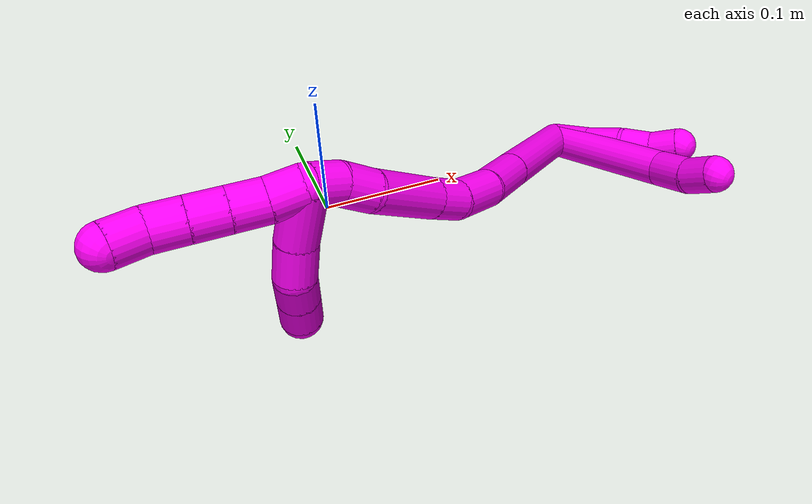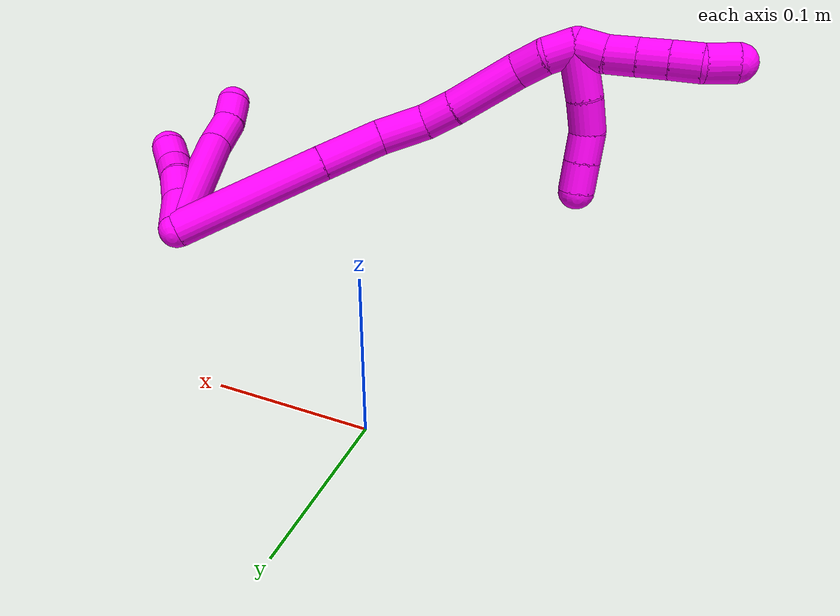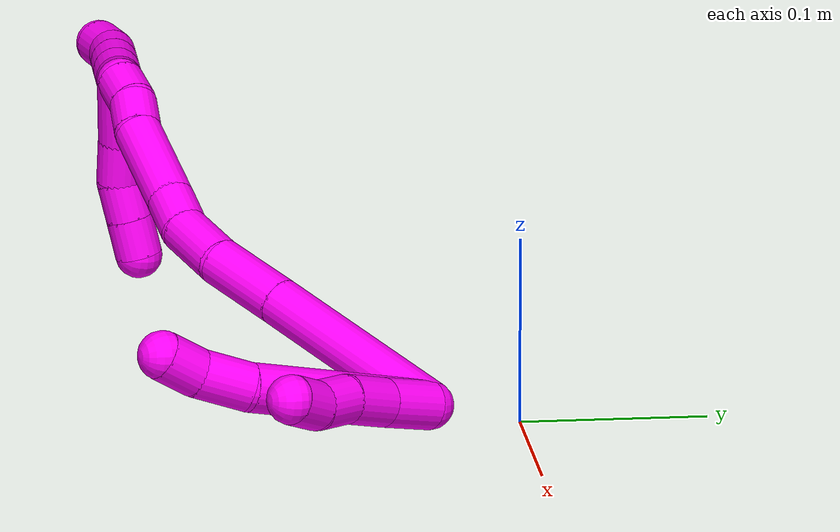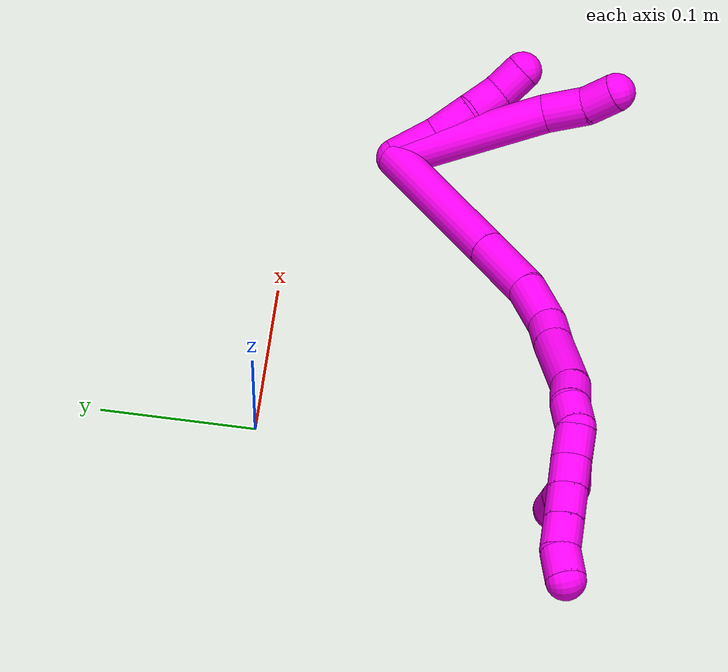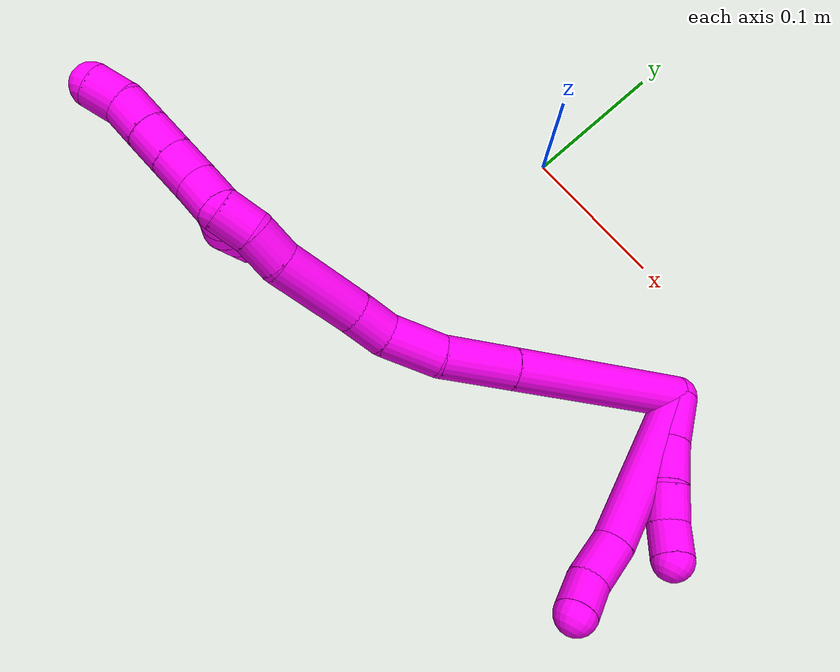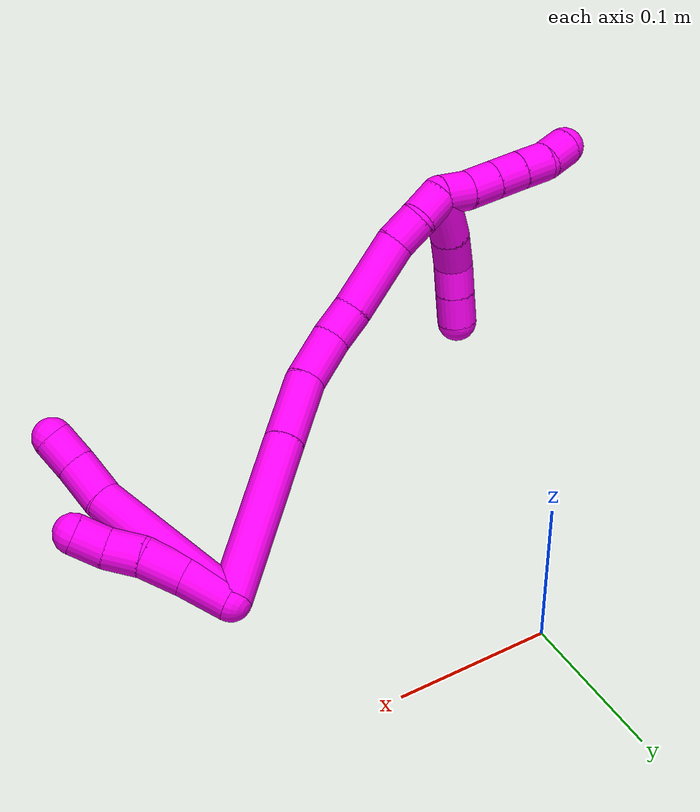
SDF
<sdf version="1.7">
 <world name="default">
  <model name="10">
   <static>0</static>
   <link name="10">
    <collision name="collision-cylinder-e_1_2_8">
     <pose>-0.006058 0.005767 0.049637 -0.115663 -0.120651 0.006994</pose>
     <geometry><cylinder><radius>0.0125</radius><length>0.100674</length></cylinder></geometry>
     <surface>
      <friction><ode><mu>1.16</mu><mu2>1.16</mu2><slip1>0</slip1><slip2>0</slip2></ode></friction>
      <contact><ode><kp>1e+06</kp><kd>1</kd><max_vel>0</max_vel><min_depth>0.001</min_depth></ode></contact>
     </surface>
    </collision>
    <visual name="visual-cylinder-e_1_2_8">
     <pose>-0.006058 0.005767 0.049637 -0.115663 -0.120651 0.006994</pose>
     <geometry><cylinder><radius>0.0125</radius><length>0.100674</length></cylinder></geometry>
     <material><ambient>1 0 0.964706 1</ambient></material>
    </visual>
    <collision name="collision-cylinder-e_2_8_9">
     <pose>-0.01673 0.012668 0.112376 -0.086325 -0.337361 0.01471</pose>
     <geometry><cylinder><radius>0.0125</radius><length>0.027873</length></cylinder></geometry>
     <surface>
      <friction><ode><mu>1.16</mu><mu2>1.16</mu2><slip1>0</slip1><slip2>0</slip2></ode></friction>
      <contact><ode><kp>1e+06</kp><kd>1</kd><max_vel>0</max_vel><min_depth>0.001</min_depth></ode></contact>
     </surface>
    </collision>
    <visual name="visual-cylinder-e_2_8_9">
     <pose>-0.01673 0.012668 0.112376 -0.086325 -0.337361 0.01471</pose>
     <geometry><cylinder><radius>0.0125</radius><length>0.027873</length></cylinder></geometry>
     <material><ambient>1 0 0.964706 1</ambient></material>
    </visual>
    <collision name="collision-cylinder-e_3_9_6">
     <pose>-0.024974 0.017362 0.134922 -0.360572 -0.345351 0.063557</pose>
     <geometry><cylinder><radius>0.0125</radius><length>0.021454</length></cylinder></geometry>
     <surface>
      <friction><ode><mu>1.16</mu><mu2>1.16</mu2><slip1>0</slip1><slip2>0</slip2></ode></friction>
      <contact><ode><kp>1e+06</kp><kd>1</kd><max_vel>0</max_vel><min_depth>0.001</min_depth></ode></contact>
     </surface>
    </collision>
    <visual name="visual-cylinder-e_3_9_6">
     <pose>-0.024974 0.017362 0.134922 -0.360572 -0.345351 0.063557</pose>
     <geometry><cylinder><radius>0.0125</radius><length>0.021454</length></cylinder></geometry>
     <material><ambient>1 0 0.964706 1</ambient></material>
    </visual>
    <collision name="collision-cylinder-e_1_2_10">
     <pose>0.000406 0.004032 0.014454 -0.272056 0.027026 -0.003699</pose>
     <geometry><cylinder><radius>0.0125</radius><length>0.030022</length></cylinder></geometry>
     <surface>
      <friction><ode><mu>1.16</mu><mu2>1.16</mu2><slip1>0</slip1><slip2>0</slip2></ode></friction>
      <contact><ode><kp>1e+06</kp><kd>1</kd><max_vel>0</max_vel><min_depth>0.001</min_depth></ode></contact>
     </surface>
    </collision>
    <visual name="visual-cylinder-e_1_2_10">
     <pose>0.000406 0.004032 0.014454 -0.272056 0.027026 -0.003699</pose>
     <geometry><cylinder><radius>0.0125</radius><length>0.030022</length></cylinder></geometry>
     <material><ambient>1 0 0.964706 1</ambient></material>
    </visual>
    <collision name="collision-cylinder-e_2_10_11">
     <pose>0.001869 0.013076 0.041296 -0.3844 0.078943 -0.01537</pose>
     <geometry><cylinder><radius>0.0125</radius><length>0.026813</length></cylinder></geometry>
     <surface>
      <friction><ode><mu>1.16</mu><mu2>1.16</mu2><slip1>0</slip1><slip2>0</slip2></ode></friction>
      <contact><ode><kp>1e+06</kp><kd>1</kd><max_vel>0</max_vel><min_depth>0.001</min_depth></ode></contact>
     </surface>
    </collision>
    <visual name="visual-cylinder-e_2_10_11">
     <pose>0.001869 0.013076 0.041296 -0.3844 0.078943 -0.01537</pose>
     <geometry><cylinder><radius>0.0125</radius><length>0.026813</length></cylinder></geometry>
     <material><ambient>1 0 0.964706 1</ambient></material>
    </visual>
    <collision name="collision-cylinder-e_3_11_12">
     <pose>0.006037 0.021353 0.06392 -0.308849 0.28188 -0.044164</pose>
     <geometry><cylinder><radius>0.0125</radius><length>0.022367</length></cylinder></geometry>
     <surface>
      <friction><ode><mu>1.16</mu><mu2>1.16</mu2><slip1>0</slip1><slip2>0</slip2></ode></friction>
      <contact><ode><kp>1e+06</kp><kd>1</kd><max_vel>0</max_vel><min_depth>0.001</min_depth></ode></contact>
     </surface>
    </collision>
    <visual name="visual-cylinder-e_3_11_12">
     <pose>0.006037 0.021353 0.06392 -0.308849 0.28188 -0.044164</pose>
     <geometry><cylinder><radius>0.0125</radius><length>0.022367</length></cylinder></geometry>
     <material><ambient>1 0 0.964706 1</ambient></material>
    </visual>
    <collision name="collision-cylinder-e_4_12_5">
     <pose>0.009944 0.029966 0.083036 -0.541914 0.076703 -0.021317</pose>
     <geometry><cylinder><radius>0.0125</radius><length>0.020798</length></cylinder></geometry>
     <surface>
      <friction><ode><mu>1.16</mu><mu2>1.16</mu2><slip1>0</slip1><slip2>0</slip2></ode></friction>
      <contact><ode><kp>1e+06</kp><kd>1</kd><max_vel>0</max_vel><min_depth>0.001</min_depth></ode></contact>
     </surface>
    </collision>
    <visual name="visual-cylinder-e_4_12_5">
     <pose>0.009944 0.029966 0.083036 -0.541914 0.076703 -0.021317</pose>
     <geometry><cylinder><radius>0.0125</radius><length>0.020798</length></cylinder></geometry>
     <material><ambient>1 0 0.964706 1</ambient></material>
    </visual>
    <collision name="collision-cylinder-e_1_2_13">
     <pose>-0.045691 -0.020581 0.019748 0.806041 -1.01273 -0.464383</pose>
     <geometry><cylinder><radius>0.0125</radius><length>0.107726</length></cylinder></geometry>
     <surface>
      <friction><ode><mu>1.16</mu><mu2>1.16</mu2><slip1>0</slip1><slip2>0</slip2></ode></friction>
      <contact><ode><kp>1e+06</kp><kd>1</kd><max_vel>0</max_vel><min_depth>0.001</min_depth></ode></contact>
     </surface>
    </collision>
    <visual name="visual-cylinder-e_1_2_13">
     <pose>-0.045691 -0.020581 0.019748 0.806041 -1.01273 -0.464383</pose>
     <geometry><cylinder><radius>0.0125</radius><length>0.107726</length></cylinder></geometry>
     <material><ambient>1 0 0.964706 1</ambient></material>
    </visual>
    <collision name="collision-cylinder-e_2_13_14">
     <pose>-0.110041 -0.04986 0.047574 0.822378 -1.00419 -0.469958</pose>
     <geometry><cylinder><radius>0.0125</radius><length>0.044231</length></cylinder></geometry>
     <surface>
      <friction><ode><mu>1.16</mu><mu2>1.16</mu2><slip1>0</slip1><slip2>0</slip2></ode></friction>
      <contact><ode><kp>1e+06</kp><kd>1</kd><max_vel>0</max_vel><min_depth>0.001</min_depth></ode></contact>
     </surface>
    </collision>
    <visual name="visual-cylinder-e_2_13_14">
     <pose>-0.110041 -0.04986 0.047574 0.822378 -1.00419 -0.469958</pose>
     <geometry><cylinder><radius>0.0125</radius><length>0.044231</length></cylinder></geometry>
     <material><ambient>1 0 0.964706 1</ambient></material>
    </visual>
    <collision name="collision-cylinder-e_3_14_15">
     <pose>-0.143605 -0.06586 0.058562 1.19153 -1.0855 -0.776341</pose>
     <geometry><cylinder><radius>0.0125</radius><length>0.033701</length></cylinder></geometry>
     <surface>
      <friction><ode><mu>1.16</mu><mu2>1.16</mu2><slip1>0</slip1><slip2>0</slip2></ode></friction>
      <contact><ode><kp>1e+06</kp><kd>1</kd><max_vel>0</max_vel><min_depth>0.001</min_depth></ode></contact>
     </surface>
    </collision>
    <visual name="visual-cylinder-e_3_14_15">
     <pose>-0.143605 -0.06586 0.058562 1.19153 -1.0855 -0.776341</pose>
     <geometry><cylinder><radius>0.0125</radius><length>0.033701</length></cylinder></geometry>
     <material><ambient>1 0 0.964706 1</ambient></material>
    </visual>
    <collision name="collision-cylinder-e_4_15_16">
     <pose>-0.169467 -0.075854 0.061116 1.70231 -1.32786 -1.45757</pose>
     <geometry><cylinder><radius>0.0125</radius><length>0.022578</length></cylinder></geometry>
     <surface>
      <friction><ode><mu>1.16</mu><mu2>1.16</mu2><slip1>0</slip1><slip2>0</slip2></ode></friction>
      <contact><ode><kp>1e+06</kp><kd>1</kd><max_vel>0</max_vel><min_depth>0.001</min_depth></ode></contact>
     </surface>
    </collision>
    <visual name="visual-cylinder-e_4_15_16">
     <pose>-0.169467 -0.075854 0.061116 1.70231 -1.32786 -1.45757</pose>
     <geometry><cylinder><radius>0.0125</radius><length>0.022578</length></cylinder></geometry>
     <material><ambient>1 0 0.964706 1</ambient></material>
    </visual>
    <collision name="collision-cylinder-e_5_16_17">
     <pose>-0.204948 -0.083278 0.061183 1.48162 -1.37945 -1.29263</pose>
     <geometry><cylinder><radius>0.0125</radius><length>0.04996</length></cylinder></geometry>
     <surface>
      <friction><ode><mu>1.16</mu><mu2>1.16</mu2><slip1>0</slip1><slip2>0</slip2></ode></friction>
      <contact><ode><kp>1e+06</kp><kd>1</kd><max_vel>0</max_vel><min_depth>0.001</min_depth></ode></contact>
     </surface>
    </collision>
    <visual name="visual-cylinder-e_5_16_17">
     <pose>-0.204948 -0.083278 0.061183 1.48162 -1.37945 -1.29263</pose>
     <geometry><cylinder><radius>0.0125</radius><length>0.04996</length></cylinder></geometry>
     <material><ambient>1 0 0.964706 1</ambient></material>
    </visual>
    <collision name="collision-cylinder-e_6_17_18">
     <pose>-0.239702 -0.089767 0.059426 2.46318 -1.30356 -2.2753</pose>
     <geometry><cylinder><radius>0.0125</radius><length>0.021211</length></cylinder></geometry>
     <surface>
      <friction><ode><mu>1.16</mu><mu2>1.16</mu2><slip1>0</slip1><slip2>0</slip2></ode></friction>
      <contact><ode><kp>1e+06</kp><kd>1</kd><max_vel>0</max_vel><min_depth>0.001</min_depth></ode></contact>
     </surface>
    </collision>
    <visual name="visual-cylinder-e_6_17_18">
     <pose>-0.239702 -0.089767 0.059426 2.46318 -1.30356 -2.2753</pose>
     <geometry><cylinder><radius>0.0125</radius><length>0.021211</length></cylinder></geometry>
     <material><ambient>1 0 0.964706 1</ambient></material>
    </visual>
    <collision name="collision-cylinder-e_7_18_1">
     <pose>-0.259432 -0.09546 0.056721 1.70323 -1.17504 -1.30046</pose>
     <geometry><cylinder><radius>0.0125</radius><length>0.020595</length></cylinder></geometry>
     <surface>
      <friction><ode><mu>1.16</mu><mu2>1.16</mu2><slip1>0</slip1><slip2>0</slip2></ode></friction>
      <contact><ode><kp>1e+06</kp><kd>1</kd><max_vel>0</max_vel><min_depth>0.001</min_depth></ode></contact>
     </surface>
    </collision>
    <visual name="visual-cylinder-e_7_18_1">
     <pose>-0.259432 -0.09546 0.056721 1.70323 -1.17504 -1.30046</pose>
     <geometry><cylinder><radius>0.0125</radius><length>0.020595</length></cylinder></geometry>
     <material><ambient>1 0 0.964706 1</ambient></material>
    </visual>
    <collision name="collision-cylinder-e_1_1_19">
     <pose>-0.27458 -0.106755 0.052464 2.04015 -0.600085 -0.933369</pose>
     <geometry><cylinder><radius>0.0125</radius><length>0.02</length></cylinder></geometry>
     <surface>
      <friction><ode><mu>1.16</mu><mu2>1.16</mu2><slip1>0</slip1><slip2>0</slip2></ode></friction>
      <contact><ode><kp>1e+06</kp><kd>1</kd><max_vel>0</max_vel><min_depth>0.001</min_depth></ode></contact>
     </surface>
    </collision>
    <visual name="visual-cylinder-e_1_1_19">
     <pose>-0.27458 -0.106755 0.052464 2.04015 -0.600085 -0.933369</pose>
     <geometry><cylinder><radius>0.0125</radius><length>0.02</length></cylinder></geometry>
     <material><ambient>1 0 0.964706 1</ambient></material>
    </visual>
    <collision name="collision-cylinder-e_2_19_20">
     <pose>-0.287276 -0.120362 0.045371 2.06431 -0.782223 -1.20802</pose>
     <geometry><cylinder><radius>0.0125</radius><length>0.02</length></cylinder></geometry>
     <surface>
      <friction><ode><mu>1.16</mu><mu2>1.16</mu2><slip1>0</slip1><slip2>0</slip2></ode></friction>
      <contact><ode><kp>1e+06</kp><kd>1</kd><max_vel>0</max_vel><min_depth>0.001</min_depth></ode></contact>
     </surface>
    </collision>
    <visual name="visual-cylinder-e_2_19_20">
     <pose>-0.287276 -0.120362 0.045371 2.06431 -0.782223 -1.20802</pose>
     <geometry><cylinder><radius>0.0125</radius><length>0.02</length></cylinder></geometry>
     <material><ambient>1 0 0.964706 1</ambient></material>
    </visual>
    <collision name="collision-cylinder-e_3_20_21">
     <pose>-0.301374 -0.132839 0.03862 2.06915 -0.782345 -1.21333</pose>
     <geometry><cylinder><radius>0.0125</radius><length>0.02</length></cylinder></geometry>
     <surface>
      <friction><ode><mu>1.16</mu><mu2>1.16</mu2><slip1>0</slip1><slip2>0</slip2></ode></friction>
      <contact><ode><kp>1e+06</kp><kd>1</kd><max_vel>0</max_vel><min_depth>0.001</min_depth></ode></contact>
     </surface>
    </collision>
    <visual name="visual-cylinder-e_3_20_21">
     <pose>-0.301374 -0.132839 0.03862 2.06915 -0.782345 -1.21333</pose>
     <geometry><cylinder><radius>0.0125</radius><length>0.02</length></cylinder></geometry>
     <material><ambient>1 0 0.964706 1</ambient></material>
    </visual>
    <collision name="collision-cylinder-e_4_21_22">
     <pose>-0.315392 -0.145356 0.031777 2.07307 -0.770988 -1.20236</pose>
     <geometry><cylinder><radius>0.0125</radius><length>0.02</length></cylinder></geometry>
     <surface>
      <friction><ode><mu>1.16</mu><mu2>1.16</mu2><slip1>0</slip1><slip2>0</slip2></ode></friction>
      <contact><ode><kp>1e+06</kp><kd>1</kd><max_vel>0</max_vel><min_depth>0.001</min_depth></ode></contact>
     </surface>
    </collision>
    <visual name="visual-cylinder-e_4_21_22">
     <pose>-0.315392 -0.145356 0.031777 2.07307 -0.770988 -1.20236</pose>
     <geometry><cylinder><radius>0.0125</radius><length>0.02</length></cylinder></geometry>
     <material><ambient>1 0 0.964706 1</ambient></material>
    </visual>
    <collision name="collision-cylinder-e_5_22_4">
     <pose>-0.329952 -0.158122 0.027711 1.66515 -0.86203 -0.935949</pose>
     <geometry><cylinder><radius>0.0125</radius><length>0.02</length></cylinder></geometry>
     <surface>
      <friction><ode><mu>1.16</mu><mu2>1.16</mu2><slip1>0</slip1><slip2>0</slip2></ode></friction>
      <contact><ode><kp>1e+06</kp><kd>1</kd><max_vel>0</max_vel><min_depth>0.001</min_depth></ode></contact>
     </surface>
    </collision>
    <visual name="visual-cylinder-e_5_22_4">
     <pose>-0.329952 -0.158122 0.027711 1.66515 -0.86203 -0.935949</pose>
     <geometry><cylinder><radius>0.0125</radius><length>0.02</length></cylinder></geometry>
     <material><ambient>1 0 0.964706 1</ambient></material>
    </visual>
    <collision name="collision-cylinder-e_1_1_23">
     <pose>-0.260302 -0.114228 0.05357 1.74611 0.520304 0.614826</pose>
     <geometry><cylinder><radius>0.0125</radius><length>0.034725</length></cylinder></geometry>
     <surface>
      <friction><ode><mu>1.16</mu><mu2>1.16</mu2><slip1>0</slip1><slip2>0</slip2></ode></friction>
      <contact><ode><kp>1e+06</kp><kd>1</kd><max_vel>0</max_vel><min_depth>0.001</min_depth></ode></contact>
     </surface>
    </collision>
    <visual name="visual-cylinder-e_1_1_23">
     <pose>-0.260302 -0.114228 0.05357 1.74611 0.520304 0.614826</pose>
     <geometry><cylinder><radius>0.0125</radius><length>0.034725</length></cylinder></geometry>
     <material><ambient>1 0 0.964706 1</ambient></material>
    </visual>
    <collision name="collision-cylinder-e_2_23_24">
     <pose>-0.245127 -0.138926 0.050115 1.65447 0.584095 0.631923</pose>
     <geometry><cylinder><radius>0.0125</radius><length>0.023731</length></cylinder></geometry>
     <surface>
      <friction><ode><mu>1.16</mu><mu2>1.16</mu2><slip1>0</slip1><slip2>0</slip2></ode></friction>
      <contact><ode><kp>1e+06</kp><kd>1</kd><max_vel>0</max_vel><min_depth>0.001</min_depth></ode></contact>
     </surface>
    </collision>
    <visual name="visual-cylinder-e_2_23_24">
     <pose>-0.245127 -0.138926 0.050115 1.65447 0.584095 0.631923</pose>
     <geometry><cylinder><radius>0.0125</radius><length>0.023731</length></cylinder></geometry>
     <material><ambient>1 0 0.964706 1</ambient></material>
    </visual>
    <collision name="collision-cylinder-e_3_24_25">
     <pose>-0.230904 -0.155107 0.046748 1.95305 0.845414 1.17461</pose>
     <geometry><cylinder><radius>0.0125</radius><length>0.020526</length></cylinder></geometry>
     <surface>
      <friction><ode><mu>1.16</mu><mu2>1.16</mu2><slip1>0</slip1><slip2>0</slip2></ode></friction>
      <contact><ode><kp>1e+06</kp><kd>1</kd><max_vel>0</max_vel><min_depth>0.001</min_depth></ode></contact>
     </surface>
    </collision>
    <visual name="visual-cylinder-e_3_24_25">
     <pose>-0.230904 -0.155107 0.046748 1.95305 0.845414 1.17461</pose>
     <geometry><cylinder><radius>0.0125</radius><length>0.020526</length></cylinder></geometry>
     <material><ambient>1 0 0.964706 1</ambient></material>
    </visual>
    <collision name="collision-cylinder-e_4_25_3">
     <pose>-0.215403 -0.167943 0.041608 1.95025 0.839542 1.16459</pose>
     <geometry><cylinder><radius>0.0125</radius><length>0.021018</length></cylinder></geometry>
     <surface>
      <friction><ode><mu>1.16</mu><mu2>1.16</mu2><slip1>0</slip1><slip2>0</slip2></ode></friction>
      <contact><ode><kp>1e+06</kp><kd>1</kd><max_vel>0</max_vel><min_depth>0.001</min_depth></ode></contact>
     </surface>
    </collision>
    <visual name="visual-cylinder-e_4_25_3">
     <pose>-0.215403 -0.167943 0.041608 1.95025 0.839542 1.16459</pose>
     <geometry><cylinder><radius>0.0125</radius><length>0.021018</length></cylinder></geometry>
     <material><ambient>1 0 0.964706 1</ambient></material>
    </visual>
    <collision name="collision-sphere-3">
     <pose>-0.207581 -0.174462 0.039009 0 -0 0</pose>
     <geometry><sphere><radius>0.0125</radius></sphere></geometry>
     <surface>
      <friction><ode><mu>1.16</mu><mu2>1.16</mu2><slip1>0</slip1><slip2>0</slip2></ode></friction>
      <contact><ode><kp>1e+06</kp><kd>1</kd><max_vel>0</max_vel><min_depth>0.001</min_depth></ode></contact>
     </surface>
    </collision>
    <visual name="visual-sphere-3">
     <pose>-0.207581 -0.174462 0.039009 0 -0 0</pose>
     <geometry><sphere><radius>0.0125</radius></sphere></geometry>
     <material><ambient>1 0 0.964706 1</ambient></material>
    </visual>
    <collision name="collision-sphere-25">
     <pose>-0.223225 -0.161424 0.044208 0 -0 0</pose>
     <geometry><sphere><radius>0.0125</radius></sphere></geometry>
     <surface>
      <friction><ode><mu>1.16</mu><mu2>1.16</mu2><slip1>0</slip1><slip2>0</slip2></ode></friction>
      <contact><ode><kp>1e+06</kp><kd>1</kd><max_vel>0</max_vel><min_depth>0.001</min_depth></ode></contact>
     </surface>
    </collision>
    <visual name="visual-sphere-25">
     <pose>-0.223225 -0.161424 0.044208 0 -0 0</pose>
     <geometry><sphere><radius>0.0125</radius></sphere></geometry>
     <material><ambient>1 0 0.964706 1</ambient></material>
    </visual>
    <collision name="collision-sphere-24">
     <pose>-0.238584 -0.14879 0.049288 0 -0 0</pose>
     <geometry><sphere><radius>0.0125</radius></sphere></geometry>
     <surface>
      <friction><ode><mu>1.16</mu><mu2>1.16</mu2><slip1>0</slip1><slip2>0</slip2></ode></friction>
      <contact><ode><kp>1e+06</kp><kd>1</kd><max_vel>0</max_vel><min_depth>0.001</min_depth></ode></contact>
     </surface>
    </collision>
    <visual name="visual-sphere-24">
     <pose>-0.238584 -0.14879 0.049288 0 -0 0</pose>
     <geometry><sphere><radius>0.0125</radius></sphere></geometry>
     <material><ambient>1 0 0.964706 1</ambient></material>
    </visual>
    <collision name="collision-sphere-23">
     <pose>-0.25167 -0.129062 0.050942 0 -0 0</pose>
     <geometry><sphere><radius>0.0125</radius></sphere></geometry>
     <surface>
      <friction><ode><mu>1.16</mu><mu2>1.16</mu2><slip1>0</slip1><slip2>0</slip2></ode></friction>
      <contact><ode><kp>1e+06</kp><kd>1</kd><max_vel>0</max_vel><min_depth>0.001</min_depth></ode></contact>
     </surface>
    </collision>
    <visual name="visual-sphere-23">
     <pose>-0.25167 -0.129062 0.050942 0 -0 0</pose>
     <geometry><sphere><radius>0.0125</radius></sphere></geometry>
     <material><ambient>1 0 0.964706 1</ambient></material>
    </visual>
    <collision name="collision-sphere-4">
     <pose>-0.337544 -0.164602 0.027098 0 -0 0</pose>
     <geometry><sphere><radius>0.0125</radius></sphere></geometry>
     <surface>
      <friction><ode><mu>1.16</mu><mu2>1.16</mu2><slip1>0</slip1><slip2>0</slip2></ode></friction>
      <contact><ode><kp>1e+06</kp><kd>1</kd><max_vel>0</max_vel><min_depth>0.001</min_depth></ode></contact>
     </surface>
    </collision>
    <visual name="visual-sphere-4">
     <pose>-0.337544 -0.164602 0.027098 0 -0 0</pose>
     <geometry><sphere><radius>0.0125</radius></sphere></geometry>
     <material><ambient>1 0 0.964706 1</ambient></material>
    </visual>
    <collision name="collision-sphere-22">
     <pose>-0.32236 -0.151642 0.028325 0 -0 0</pose>
     <geometry><sphere><radius>0.0125</radius></sphere></geometry>
     <surface>
      <friction><ode><mu>1.16</mu><mu2>1.16</mu2><slip1>0</slip1><slip2>0</slip2></ode></friction>
      <contact><ode><kp>1e+06</kp><kd>1</kd><max_vel>0</max_vel><min_depth>0.001</min_depth></ode></contact>
     </surface>
    </collision>
    <visual name="visual-sphere-22">
     <pose>-0.32236 -0.151642 0.028325 0 -0 0</pose>
     <geometry><sphere><radius>0.0125</radius></sphere></geometry>
     <material><ambient>1 0 0.964706 1</ambient></material>
    </visual>
    <collision name="collision-sphere-21">
     <pose>-0.308424 -0.139069 0.03523 0 -0 0</pose>
     <geometry><sphere><radius>0.0125</radius></sphere></geometry>
     <surface>
      <friction><ode><mu>1.16</mu><mu2>1.16</mu2><slip1>0</slip1><slip2>0</slip2></ode></friction>
      <contact><ode><kp>1e+06</kp><kd>1</kd><max_vel>0</max_vel><min_depth>0.001</min_depth></ode></contact>
     </surface>
    </collision>
    <visual name="visual-sphere-21">
     <pose>-0.308424 -0.139069 0.03523 0 -0 0</pose>
     <geometry><sphere><radius>0.0125</radius></sphere></geometry>
     <material><ambient>1 0 0.964706 1</ambient></material>
    </visual>
    <collision name="collision-sphere-20">
     <pose>-0.294325 -0.126609 0.042011 0 -0 0</pose>
     <geometry><sphere><radius>0.0125</radius></sphere></geometry>
     <surface>
      <friction><ode><mu>1.16</mu><mu2>1.16</mu2><slip1>0</slip1><slip2>0</slip2></ode></friction>
      <contact><ode><kp>1e+06</kp><kd>1</kd><max_vel>0</max_vel><min_depth>0.001</min_depth></ode></contact>
     </surface>
    </collision>
    <visual name="visual-sphere-20">
     <pose>-0.294325 -0.126609 0.042011 0 -0 0</pose>
     <geometry><sphere><radius>0.0125</radius></sphere></geometry>
     <material><ambient>1 0 0.964706 1</ambient></material>
    </visual>
    <collision name="collision-sphere-11">
     <pose>0.002926 0.018088 0.053686 0 -0 0</pose>
     <geometry><sphere><radius>0.0125</radius></sphere></geometry>
     <surface>
      <friction><ode><mu>1.16</mu><mu2>1.16</mu2><slip1>0</slip1><slip2>0</slip2></ode></friction>
      <contact><ode><kp>1e+06</kp><kd>1</kd><max_vel>0</max_vel><min_depth>0.001</min_depth></ode></contact>
     </surface>
    </collision>
    <visual name="visual-sphere-11">
     <pose>0.002926 0.018088 0.053686 0 -0 0</pose>
     <geometry><sphere><radius>0.0125</radius></sphere></geometry>
     <material><ambient>1 0 0.964706 1</ambient></material>
    </visual>
    <collision name="collision-sphere-10">
     <pose>0.000811 0.008064 0.028907 0 -0 0</pose>
     <geometry><sphere><radius>0.0125</radius></sphere></geometry>
     <surface>
      <friction><ode><mu>1.16</mu><mu2>1.16</mu2><slip1>0</slip1><slip2>0</slip2></ode></friction>
      <contact><ode><kp>1e+06</kp><kd>1</kd><max_vel>0</max_vel><min_depth>0.001</min_depth></ode></contact>
     </surface>
    </collision>
    <visual name="visual-sphere-10">
     <pose>0.000811 0.008064 0.028907 0 -0 0</pose>
     <geometry><sphere><radius>0.0125</radius></sphere></geometry>
     <material><ambient>1 0 0.964706 1</ambient></material>
    </visual>
    <collision name="collision-sphere-6">
     <pose>-0.028605 0.020924 0.144366 0 -0 0</pose>
     <geometry><sphere><radius>0.0125</radius></sphere></geometry>
     <surface>
      <friction><ode><mu>1.16</mu><mu2>1.16</mu2><slip1>0</slip1><slip2>0</slip2></ode></friction>
      <contact><ode><kp>1e+06</kp><kd>1</kd><max_vel>0</max_vel><min_depth>0.001</min_depth></ode></contact>
     </surface>
    </collision>
    <visual name="visual-sphere-6">
     <pose>-0.028605 0.020924 0.144366 0 -0 0</pose>
     <geometry><sphere><radius>0.0125</radius></sphere></geometry>
     <material><ambient>1 0 0.964706 1</ambient></material>
    </visual>
    <collision name="collision-sphere-9">
     <pose>-0.021343 0.013801 0.125478 0 -0 0</pose>
     <geometry><sphere><radius>0.0125</radius></sphere></geometry>
     <surface>
      <friction><ode><mu>1.16</mu><mu2>1.16</mu2><slip1>0</slip1><slip2>0</slip2></ode></friction>
      <contact><ode><kp>1e+06</kp><kd>1</kd><max_vel>0</max_vel><min_depth>0.001</min_depth></ode></contact>
     </surface>
    </collision>
    <visual name="visual-sphere-9">
     <pose>-0.021343 0.013801 0.125478 0 -0 0</pose>
     <geometry><sphere><radius>0.0125</radius></sphere></geometry>
     <material><ambient>1 0 0.964706 1</ambient></material>
    </visual>
    <collision name="collision-sphere-2">
     <geometry><sphere><radius>0.0125</radius></sphere></geometry>
     <surface>
      <friction><ode><mu>1.16</mu><mu2>1.16</mu2><slip1>0</slip1><slip2>0</slip2></ode></friction>
      <contact><ode><kp>1e+06</kp><kd>1</kd><max_vel>0</max_vel><min_depth>0.001</min_depth></ode></contact>
     </surface>
    </collision>
    <visual name="visual-sphere-2">
     <geometry><sphere><radius>0.0125</radius></sphere></geometry>
     <material><ambient>1 0 0.964706 1</ambient></material>
    </visual>
    <collision name="collision-sphere-19">
     <pose>-0.280228 -0.114115 0.048731 0 -0 0</pose>
     <geometry><sphere><radius>0.0125</radius></sphere></geometry>
     <surface>
      <friction><ode><mu>1.16</mu><mu2>1.16</mu2><slip1>0</slip1><slip2>0</slip2></ode></friction>
      <contact><ode><kp>1e+06</kp><kd>1</kd><max_vel>0</max_vel><min_depth>0.001</min_depth></ode></contact>
     </surface>
    </collision>
    <visual name="visual-sphere-19">
     <pose>-0.280228 -0.114115 0.048731 0 -0 0</pose>
     <geometry><sphere><radius>0.0125</radius></sphere></geometry>
     <material><ambient>1 0 0.964706 1</ambient></material>
    </visual>
    <collision name="collision-sphere-8">
     <pose>-0.012117 0.011534 0.099274 0 -0 0</pose>
     <geometry><sphere><radius>0.0125</radius></sphere></geometry>
     <surface>
      <friction><ode><mu>1.16</mu><mu2>1.16</mu2><slip1>0</slip1><slip2>0</slip2></ode></friction>
      <contact><ode><kp>1e+06</kp><kd>1</kd><max_vel>0</max_vel><min_depth>0.001</min_depth></ode></contact>
     </surface>
    </collision>
    <visual name="visual-sphere-8">
     <pose>-0.012117 0.011534 0.099274 0 -0 0</pose>
     <geometry><sphere><radius>0.0125</radius></sphere></geometry>
     <material><ambient>1 0 0.964706 1</ambient></material>
    </visual>
    <collision name="collision-sphere-12">
     <pose>0.009147 0.024618 0.074153 0 -0 0</pose>
     <geometry><sphere><radius>0.0125</radius></sphere></geometry>
     <surface>
      <friction><ode><mu>1.16</mu><mu2>1.16</mu2><slip1>0</slip1><slip2>0</slip2></ode></friction>
      <contact><ode><kp>1e+06</kp><kd>1</kd><max_vel>0</max_vel><min_depth>0.001</min_depth></ode></contact>
     </surface>
    </collision>
    <visual name="visual-sphere-12">
     <pose>0.009147 0.024618 0.074153 0 -0 0</pose>
     <geometry><sphere><radius>0.0125</radius></sphere></geometry>
     <material><ambient>1 0 0.964706 1</ambient></material>
    </visual>
    <collision name="collision-sphere-5">
     <pose>0.010741 0.035314 0.09192 0 -0 0</pose>
     <geometry><sphere><radius>0.0125</radius></sphere></geometry>
     <surface>
      <friction><ode><mu>1.16</mu><mu2>1.16</mu2><slip1>0</slip1><slip2>0</slip2></ode></friction>
      <contact><ode><kp>1e+06</kp><kd>1</kd><max_vel>0</max_vel><min_depth>0.001</min_depth></ode></contact>
     </surface>
    </collision>
    <visual name="visual-sphere-5">
     <pose>0.010741 0.035314 0.09192 0 -0 0</pose>
     <geometry><sphere><radius>0.0125</radius></sphere></geometry>
     <material><ambient>1 0 0.964706 1</ambient></material>
    </visual>
    <collision name="collision-sphere-13">
     <pose>-0.091382 -0.041162 0.039496 0 -0 0</pose>
     <geometry><sphere><radius>0.0125</radius></sphere></geometry>
     <surface>
      <friction><ode><mu>1.16</mu><mu2>1.16</mu2><slip1>0</slip1><slip2>0</slip2></ode></friction>
      <contact><ode><kp>1e+06</kp><kd>1</kd><max_vel>0</max_vel><min_depth>0.001</min_depth></ode></contact>
     </surface>
    </collision>
    <visual name="visual-sphere-13">
     <pose>-0.091382 -0.041162 0.039496 0 -0 0</pose>
     <geometry><sphere><radius>0.0125</radius></sphere></geometry>
     <material><ambient>1 0 0.964706 1</ambient></material>
    </visual>
    <collision name="collision-sphere-14">
     <pose>-0.1287 -0.058559 0.055652 0 -0 0</pose>
     <geometry><sphere><radius>0.0125</radius></sphere></geometry>
     <surface>
      <friction><ode><mu>1.16</mu><mu2>1.16</mu2><slip1>0</slip1><slip2>0</slip2></ode></friction>
      <contact><ode><kp>1e+06</kp><kd>1</kd><max_vel>0</max_vel><min_depth>0.001</min_depth></ode></contact>
     </surface>
    </collision>
    <visual name="visual-sphere-14">
     <pose>-0.1287 -0.058559 0.055652 0 -0 0</pose>
     <geometry><sphere><radius>0.0125</radius></sphere></geometry>
     <material><ambient>1 0 0.964706 1</ambient></material>
    </visual>
    <collision name="collision-sphere-15">
     <pose>-0.15851 -0.073162 0.061472 0 -0 0</pose>
     <geometry><sphere><radius>0.0125</radius></sphere></geometry>
     <surface>
      <friction><ode><mu>1.16</mu><mu2>1.16</mu2><slip1>0</slip1><slip2>0</slip2></ode></friction>
      <contact><ode><kp>1e+06</kp><kd>1</kd><max_vel>0</max_vel><min_depth>0.001</min_depth></ode></contact>
     </surface>
    </collision>
    <visual name="visual-sphere-15">
     <pose>-0.15851 -0.073162 0.061472 0 -0 0</pose>
     <geometry><sphere><radius>0.0125</radius></sphere></geometry>
     <material><ambient>1 0 0.964706 1</ambient></material>
    </visual>
    <collision name="collision-sphere-16">
     <pose>-0.180424 -0.078546 0.06076 0 -0 0</pose>
     <geometry><sphere><radius>0.0125</radius></sphere></geometry>
     <surface>
      <friction><ode><mu>1.16</mu><mu2>1.16</mu2><slip1>0</slip1><slip2>0</slip2></ode></friction>
      <contact><ode><kp>1e+06</kp><kd>1</kd><max_vel>0</max_vel><min_depth>0.001</min_depth></ode></contact>
     </surface>
    </collision>
    <visual name="visual-sphere-16">
     <pose>-0.180424 -0.078546 0.06076 0 -0 0</pose>
     <geometry><sphere><radius>0.0125</radius></sphere></geometry>
     <material><ambient>1 0 0.964706 1</ambient></material>
    </visual>
    <collision name="collision-sphere-17">
     <pose>-0.229473 -0.08801 0.061606 0 -0 0</pose>
     <geometry><sphere><radius>0.0125</radius></sphere></geometry>
     <surface>
      <friction><ode><mu>1.16</mu><mu2>1.16</mu2><slip1>0</slip1><slip2>0</slip2></ode></friction>
      <contact><ode><kp>1e+06</kp><kd>1</kd><max_vel>0</max_vel><min_depth>0.001</min_depth></ode></contact>
     </surface>
    </collision>
    <visual name="visual-sphere-17">
     <pose>-0.229473 -0.08801 0.061606 0 -0 0</pose>
     <geometry><sphere><radius>0.0125</radius></sphere></geometry>
     <material><ambient>1 0 0.964706 1</ambient></material>
    </visual>
    <collision name="collision-sphere-18">
     <pose>-0.24993 -0.091525 0.057245 0 -0 0</pose>
     <geometry><sphere><radius>0.0125</radius></sphere></geometry>
     <surface>
      <friction><ode><mu>1.16</mu><mu2>1.16</mu2><slip1>0</slip1><slip2>0</slip2></ode></friction>
      <contact><ode><kp>1e+06</kp><kd>1</kd><max_vel>0</max_vel><min_depth>0.001</min_depth></ode></contact>
     </surface>
    </collision>
    <visual name="visual-sphere-18">
     <pose>-0.24993 -0.091525 0.057245 0 -0 0</pose>
     <geometry><sphere><radius>0.0125</radius></sphere></geometry>
     <material><ambient>1 0 0.964706 1</ambient></material>
    </visual>
    <collision name="collision-sphere-1">
     <pose>-0.268933 -0.099394 0.056197 0 -0 0</pose>
     <geometry><sphere><radius>0.0125</radius></sphere></geometry>
     <surface>
      <friction><ode><mu>1.16</mu><mu2>1.16</mu2><slip1>0</slip1><slip2>0</slip2></ode></friction>
      <contact><ode><kp>1e+06</kp><kd>1</kd><max_vel>0</max_vel><min_depth>0.001</min_depth></ode></contact>
     </surface>
    </collision>
    <visual name="visual-sphere-1">
     <pose>-0.268933 -0.099394 0.056197 0 -0 0</pose>
     <geometry><sphere><radius>0.0125</radius></sphere></geometry>
     <material><ambient>1 0 0.964706 1</ambient></material>
    </visual>
    <inertial>
     <pose>-0.126165 -0.054336 0.050126 0 -0 0</pose>
     <mass>0.75</mass>
     <inertia>
      <ixx>0.000113</ixx>
      <ixy>0</ixy>
      <ixz>0</ixz>
      <iyy>0.000186</iyy>
      <iyz>0</iyz>
      <izz>0.000199</izz>
     </inertia>
    </inertial>
   </link>
   <pose>0.17469 -0.066368 0.061644 1.50386 0.756275 0.311417</pose>
  </model>
 </world>
</sdf>
